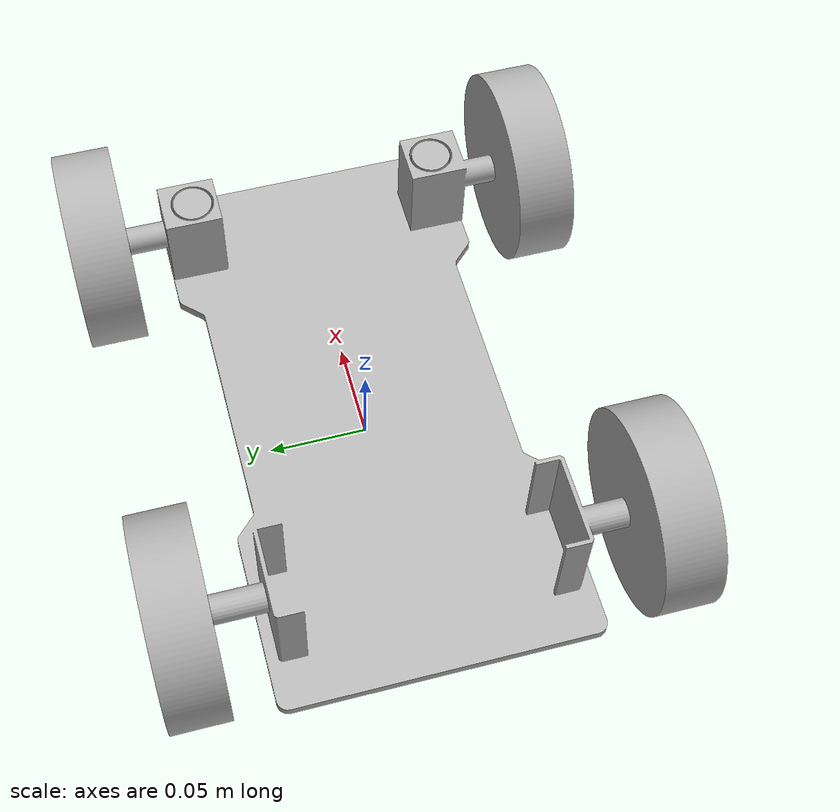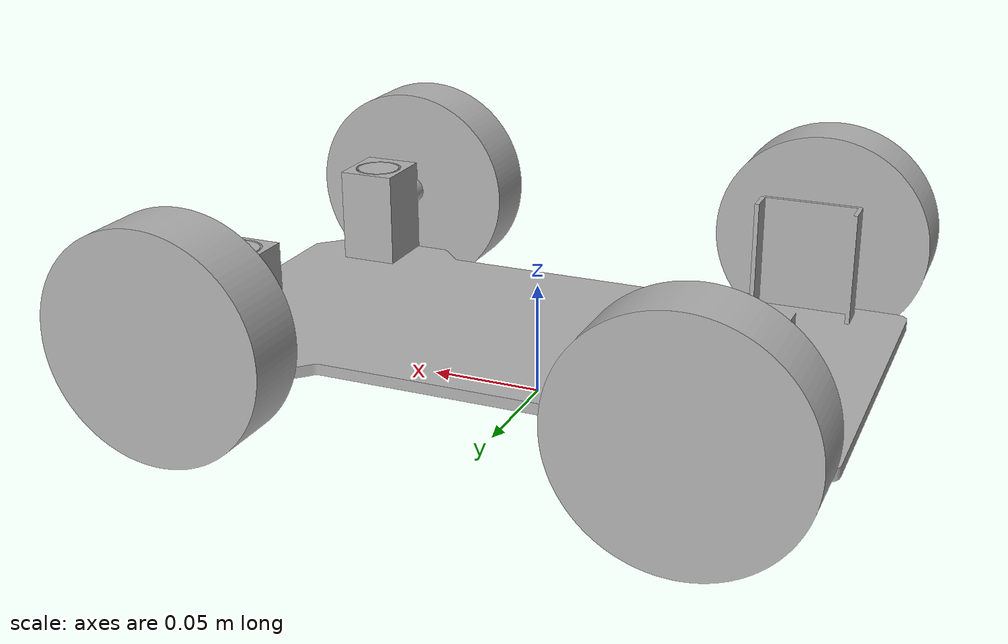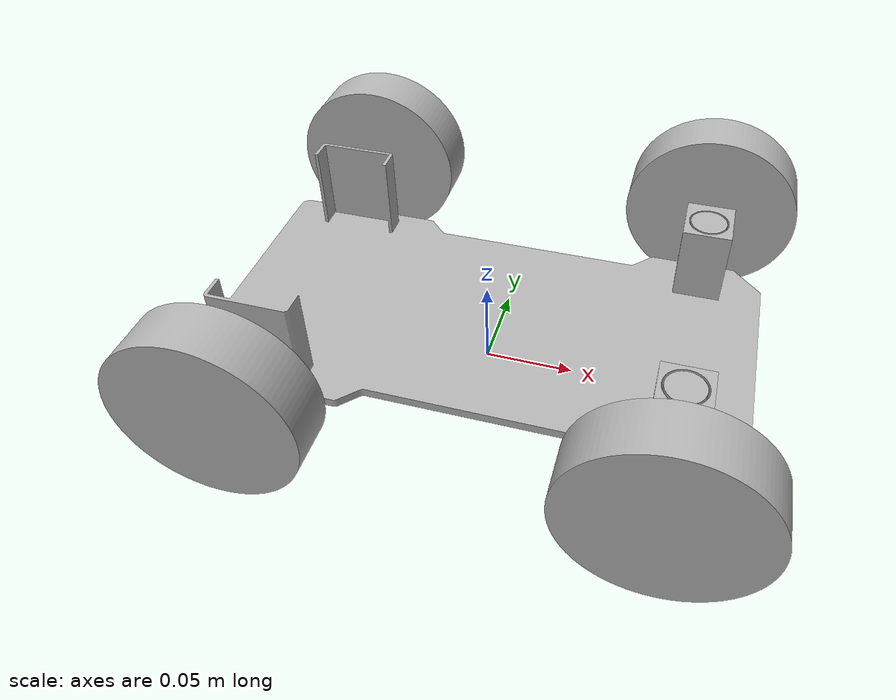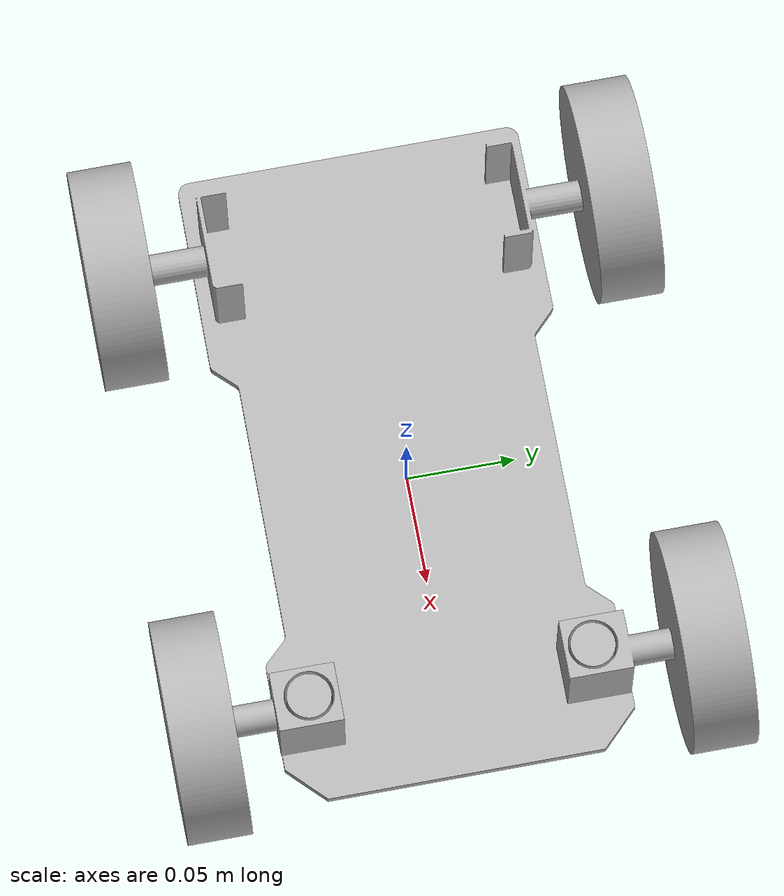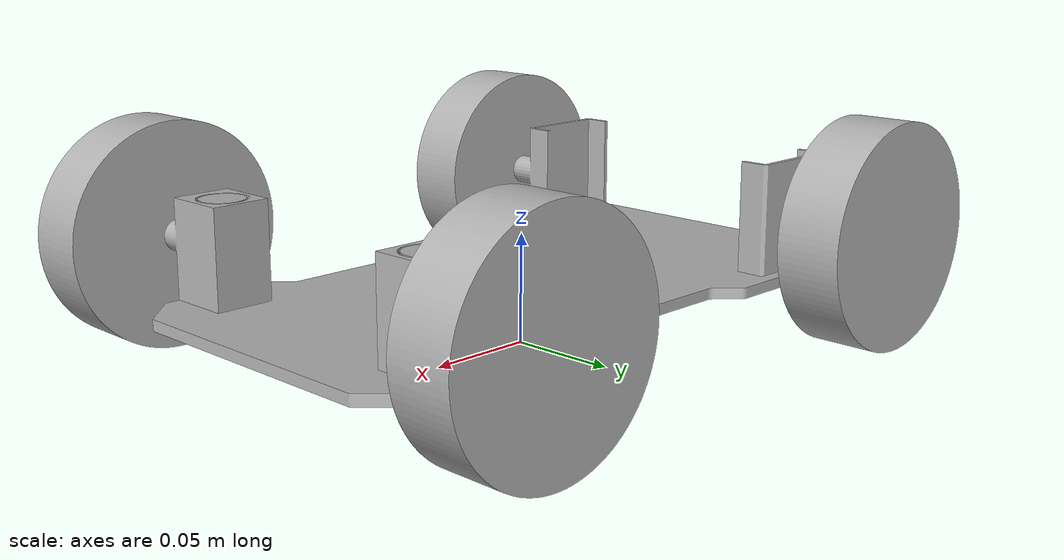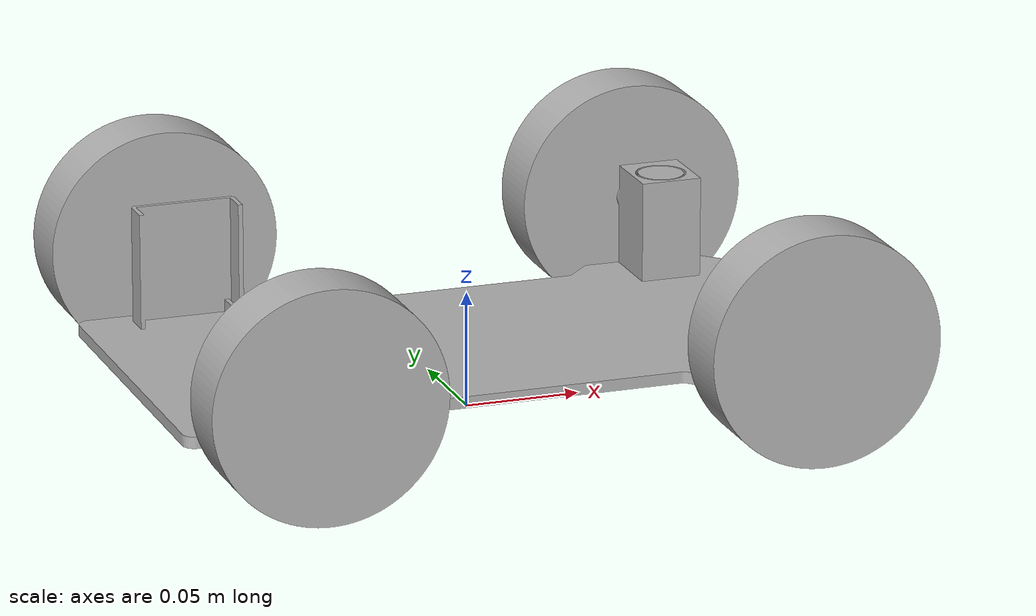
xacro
<?xml version="1.0"?>
<robot name="jetrover_rebuild" xmlns:xacro="http://www.ros.org/wiki/xacro">

  <xacro:include filename="$(find jetrover_rebuild_description)/urdf/materials.xacro" />
  <xacro:include filename="$(find jetrover_rebuild_description)/urdf/jetrover_rebuild.trans" />
  <xacro:include filename="$(find jetrover_rebuild_description)/urdf/jetrover_rebuild.gazebo" />
  <link name="base_footprint" />
  <joint name="base_joint" type="fixed">
    <origin xyz="0.0 0.0 0.0" rpy="0.0 0.0 0.0"/>
    <parent link="base_footprint"/>
    <child link="base_link"/>
  </joint>
  <link name="base_link">
    <inertial>
      <origin xyz="0.0019364990199287966 -0.00023896766879380398 0.031208161549581555" rpy="0 0 0" />
      <mass value="2.098233353247207" />
      <inertia ixx="0.005283" iyy="0.017709" izz="0.022454" ixy="1e-05" iyz="2e-06" ixz="-0.000106" />
    </inertial>
    <visual>
      <origin xyz="0 0 0" rpy="0 0 0" />
      <geometry>
        <mesh filename="file://$(find jetrover_rebuild_description)/meshes/base_link.stl"
          scale="0.001 0.001 0.001" />
      </geometry>
      <material name="silver" />
    </visual>
    <collision>
      <origin xyz="0 0 0" rpy="0 0 0" />
      <geometry>
        <mesh filename="file://$(find jetrover_rebuild_description)/meshes/base_link.stl"
          scale="0.001 0.001 0.001" />
      </geometry>
    </collision>
  </link>

  <link name="wheel_left_back_1">
    <inertial>
      <origin xyz="1.6690312705847088e-05 0.01450020228693985 -1.892657836566336e-07" rpy="0 0 0" />
      <mass value="1.7879589189742926" />
      <inertia ixx="0.001243" iyy="0.002235" izz="0.001243" ixy="1e-06" iyz="0.0" ixz="0.0" />
    </inertial>
    <visual>
      <origin xyz="0.101823 -0.098926 -0.05207" rpy="0 0 0" />
      <geometry>
        <mesh filename="file://$(find jetrover_rebuild_description)/meshes/wheel_left_back_1.stl"
          scale="0.001 0.001 0.001" />
      </geometry>
      <material name="silver" />
    </visual>
    <collision>
      <origin xyz="0.101823 -0.098926 -0.05207" rpy="0 0 0" />
      <geometry>
        <mesh filename="file://$(find jetrover_rebuild_description)/meshes/wheel_left_back_1.stl"
          scale="0.001 0.001 0.001" />
      </geometry>
    </collision>
  </link>

  <link name="wheel_right_back_1">
    <inertial>
      <origin xyz="-3.551414162750177e-07 -0.014500074031919469 -1.892657836566336e-07" rpy="0 0 0" />
      <mass value="1.7879589189742906" />
      <inertia ixx="0.001243" iyy="0.002235" izz="0.001243" ixy="0.0" iyz="0.0" ixz="0.0" />
    </inertial>
    <visual>
      <origin xyz="0.102022 0.098804 -0.05207" rpy="0 0 0" />
      <geometry>
        <mesh filename="file://$(find jetrover_rebuild_description)/meshes/wheel_right_back_1.stl"
          scale="0.001 0.001 0.001" />
      </geometry>
      <material name="silver" />
    </visual>
    <collision>
      <origin xyz="0.102022 0.098804 -0.05207" rpy="0 0 0" />
      <geometry>
        <mesh filename="file://$(find jetrover_rebuild_description)/meshes/wheel_right_back_1.stl"
          scale="0.001 0.001 0.001" />
      </geometry>
    </collision>
  </link>

  <link name="right_turn_shaft_1">
    <inertial>
      <origin xyz="0.0001723628534460453 -0.005668596616535834 -0.02188263555275391" rpy="0 0 0" />
      <mass value="0.15532272054737142" />
      <inertia ixx="4.7e-05" iyy="3.3e-05" izz="3.7e-05" ixy="0.0" iyz="0.0" ixz="-0.0" />
    </inertial>
    <visual>
      <origin xyz="-0.111122 0.064188 -0.073" rpy="0 0 0" />
      <geometry>
        <mesh filename="file://$(find jetrover_rebuild_description)/meshes/right_turn_shaft_1.stl"
          scale="0.001 0.001 0.001" />
      </geometry>
      <material name="silver" />
    </visual>
    <collision>
      <origin xyz="-0.111122 0.064188 -0.073" rpy="0 0 0" />
      <geometry>
        <mesh filename="file://$(find jetrover_rebuild_description)/meshes/right_turn_shaft_1.stl"
          scale="0.001 0.001 0.001" />
      </geometry>
    </collision>
  </link>

  <link name="left_turn_shaft_1">
    <inertial>
      <origin xyz="0.00032518565016395606 0.006545827547908001 -0.021878975044379655" rpy="0 0 0" />
      <mass value="0.1585524689459937" />
      <inertia ixx="4.8e-05" iyy="3.4e-05" izz="3.8e-05" ixy="0.0" iyz="-0.0" ixz="-0.0" />
    </inertial>
    <visual>
      <origin xyz="-0.111055 -0.062677 -0.073" rpy="0 0 0" />
      <geometry>
        <mesh filename="file://$(find jetrover_rebuild_description)/meshes/left_turn_shaft_1.stl"
          scale="0.001 0.001 0.001" />
      </geometry>
      <material name="silver" />
    </visual>
    <collision>
      <origin xyz="-0.111055 -0.062677 -0.073" rpy="0 0 0" />
      <geometry>
        <mesh filename="file://$(find jetrover_rebuild_description)/meshes/left_turn_shaft_1.stl"
          scale="0.001 0.001 0.001" />
      </geometry>
    </collision>
  </link>

  <link name="wheel_right_front_1">
    <inertial>
      <origin xyz="-2.0837485455171834e-07 -0.014500074031919441 -3.3211967127855235e-08"
        rpy="0 0 0" />
      <mass value="1.7879589189742906" />
      <inertia ixx="0.001243" iyy="0.002235" izz="0.001243" ixy="0.0" iyz="0.0" ixz="0.0" />
    </inertial>
    <visual>
      <origin xyz="-0.111358 0.098804 -0.051794" rpy="0 0 0" />
      <geometry>
        <mesh filename="file://$(find jetrover_rebuild_description)/meshes/wheel_right_front_1.stl"
          scale="0.001 0.001 0.001" />
      </geometry>
      <material name="silver" />
    </visual>
    <collision>
      <origin xyz="-0.111358 0.098804 -0.051794" rpy="0 0 0" />
      <geometry>
        <mesh filename="file://$(find jetrover_rebuild_description)/meshes/wheel_right_front_1.stl"
          scale="0.001 0.001 0.001" />
      </geometry>
    </collision>
  </link>

  <link name="wheel_left_front_1">
    <inertial>
      <origin xyz="1.6554019610481863e-05 0.014500339618044575 -3.3211967127855235e-08" rpy="0 0 0" />
      <mass value="1.7879589189742926" />
      <inertia ixx="0.001243" iyy="0.002235" izz="0.001243" ixy="1e-06" iyz="0.0" ixz="-0.0" />
    </inertial>
    <visual>
      <origin xyz="-0.111492 -0.098689 -0.051794" rpy="0 0 0" />
      <geometry>
        <mesh filename="file://$(find jetrover_rebuild_description)/meshes/wheel_left_front_1.stl"
          scale="0.001 0.001 0.001" />
      </geometry>
      <material name="silver" />
    </visual>
    <collision>
      <origin xyz="-0.111492 -0.098689 -0.051794" rpy="0 0 0" />
      <geometry>
        <mesh filename="file://$(find jetrover_rebuild_description)/meshes/wheel_left_front_1.stl"
          scale="0.001 0.001 0.001" />
      </geometry>
    </collision>
  </link>

  <joint name="joint_left_back" type="continuous">
    <origin xyz="-0.101823 0.098926 0.05207" rpy="0 0 0" />
    <parent link="base_link" />
    <child link="wheel_left_back_1" />
    <axis xyz="0.00116 0.999999 0.0" />
  </joint>

  <joint name="joint_right_back" type="continuous">
    <origin xyz="-0.102022 -0.098804 0.05207" rpy="0 0 0" />
    <parent link="base_link" />
    <child link="wheel_right_back_1" />
    <axis xyz="0.0 -1.0 0.0" />
  </joint>

  <joint name="shaft_joint_right_front" type="revolute">
    <origin xyz="0.111122 -0.064188 0.073" rpy="0 0 0" />
    <parent link="base_link" />
    <child link="right_turn_shaft_1" />
    <axis xyz="0.0 0.0 1.0" />
    <limit upper="0.645772" lower="-0.645772" effort="100" velocity="100" />
  </joint>

  <joint name="shaft_joint_left_front" type="revolute">
    <origin xyz="0.111055 0.062677 0.073" rpy="0 0 0" />
    <parent link="base_link" />
    <child link="left_turn_shaft_1" />
    <axis xyz="0.0 0.0 1.0" />
    <limit upper="0.645772" lower="-0.645772" effort="100" velocity="100" />
  </joint>

  <joint name="joint_right_front" type="continuous">
    <origin xyz="0.000236 -0.034616 -0.021206" rpy="0 0 0" />
    <parent link="right_turn_shaft_1" />
    <child link="wheel_right_front_1" />
    <axis xyz="0.0 -1.0 0.0" />
  </joint>

  <joint name="joint_left_front" type="continuous">
    <origin xyz="0.000437 0.036012 -0.021206" rpy="0 0 0" />
    <parent link="left_turn_shaft_1" />
    <child link="wheel_left_front_1" />
    <axis xyz="0.00116 0.999999 -0.0" />
  </joint>

</robot>

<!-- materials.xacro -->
<robot name="jetrover_rebuild" xmlns:xacro="http://www.ros.org/wiki/xacro" >

<material name="silver">
  <color rgba="0.700 0.700 0.700 1.000"/>
</material>

</robot>

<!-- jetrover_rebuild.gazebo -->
<robot name="jetrover_rebuild" xmlns:xacro="http://www.ros.org/wiki/xacro" >

<xacro:property name="body_color" value="Gazebo/Silver" />

<!-- Ackerman 速度控制 Gazebo 插件配置 -->
<gazebo>
  <plugin filename="gz-sim-sensors-system" name="gz::sim::systems::Sensors">
    <render_engine>ogre2</render_engine>
  </plugin>

  <!-- 发布 joint state 到 ROS -->
  <plugin filename="gz-sim-joint-state-publisher-system" name="gz::sim::systems::JointStatePublisher">
    <topic>/joint_states</topic>
  </plugin>

  <!-- 差速驱动插件 -->
   <plugin filename="gz-sim-diff-drive-system" name="gz::sim::systems::DiffDrive">
    <left_joint>shaft_joint_left_front</left_joint>
    <rightjoint>shaft_joint_right_front</rightjoint>
    <wheel_separation>0.197</wheel_separation>
    <wheel_radius>0.05</wheel_radius>
    <odom_publish_frequency>30</odom_publish_frequency>
    <topic>/cmd_vel</topic>
    <tf_topic>/tf</tf_topic>
    <frame_id>odom</frame_id>
    <odom_topic>odom</odom_topic>
    <child_frame_id>base_footprint</child_frame_id>
  </plugin>
</gazebo>

<gazebo reference="base_link">
  <material>${body_color}</material>
  <mu1>0.2</mu1>
  <mu2>0.2</mu2>
  <self_collide>true</self_collide>
  <gravity>true</gravity>
</gazebo>

<gazebo reference="wheel_left_back_1">
  <material>${body_color}</material>
  <mu1>0.2</mu1>
  <mu2>0.2</mu2>
  <self_collide>true</self_collide>
</gazebo>

<gazebo reference="wheel_right_back_1">
  <material>${body_color}</material>
  <mu1>0.2</mu1>
  <mu2>0.2</mu2>
  <self_collide>true</self_collide>
</gazebo>

<gazebo reference="right_turn_shaft_1">
  <material>${body_color}</material>
  <mu1>0.2</mu1>
  <mu2>0.2</mu2>
  <self_collide>true</self_collide>
</gazebo>

<gazebo reference="left_turn_shaft_1">
  <material>${body_color}</material>
  <mu1>0.2</mu1>
  <mu2>0.2</mu2>
  <self_collide>true</self_collide>
</gazebo>

<gazebo reference="wheel_right_front_1">
  <material>${body_color}</material>
  <mu1>0.2</mu1>
  <mu2>0.2</mu2>
  <self_collide>true</self_collide>
</gazebo>

<gazebo reference="wheel_left_front_1">
  <material>${body_color}</material>
  <mu1>0.2</mu1>
  <mu2>0.2</mu2>
  <self_collide>true</self_collide>
</gazebo>

</robot>
